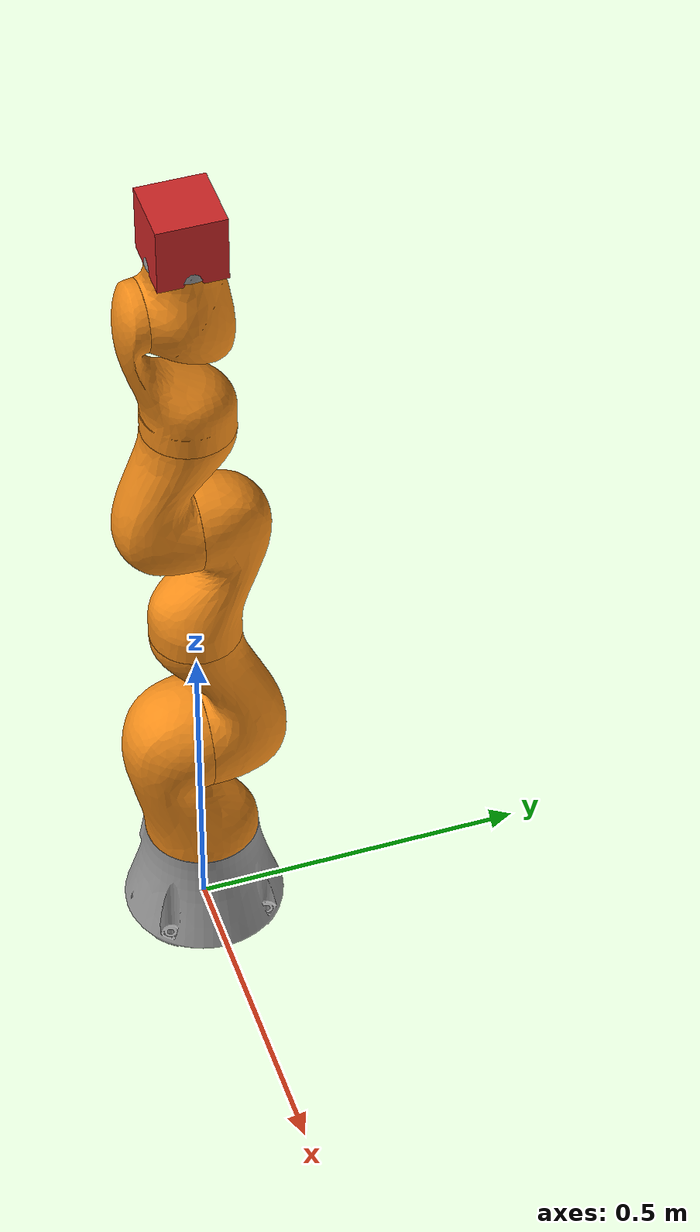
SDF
<sdf version='1.6'>
  <model name='iiwa14'>
    <link name='link_0'>
      <pose frame=''>0 0 0 0 -0 0</pose>
      <inertial>
        <pose frame=''>-0.1 0 0.07 0 -0 0</pose>
        <mass>5</mass>
        <inertia>
          <ixx>0.05</ixx>
          <ixy>0</ixy>
          <ixz>0</ixz>
          <iyy>0.06</iyy>
          <iyz>0</iyz>
          <izz>0.03</izz>
        </inertia>
      </inertial>
      <collision name='link_0_collision'>
        <pose frame=''>0 0 0 0 -0 0</pose>
        <geometry>
          <mesh>
            <scale>1 1 1</scale>
            <uri>model://iiwa_description/meshes/iiwa14/collision/link_0.stl</uri>
          </mesh>
        </geometry>
        <surface>
          <contact>
            <ode/>
          </contact>
          <friction>
            <ode>
              <mu>0.2</mu>
              <mu2>0.2</mu2>
            </ode>
          </friction>
        </surface>
      </collision>
      <visual name='link_0_visual'>
        <pose frame=''>0 0 0 0 -0 0</pose>
        <geometry>
          <mesh>
            <scale>1 1 1</scale>
            <uri>model://iiwa_description/meshes/iiwa14/visual/link_0.stl</uri>
          </mesh>
        </geometry>
        <material>
          <script>
            <name>Gazebo/Grey</name>
            <uri>file://media/materials/scripts/gazebo.material</uri>
          </script>
        </material>
      </visual>
      <gravity>1</gravity>
      <velocity_decay/>
    </link>
    <joint name='world_joint' type='fixed'>
      <child>link_0</child>
      <parent>world</parent>
    </joint>
    <link name='link_1'>
      <pose frame=''>0 0 0.1575 0 -0 0</pose>
      <inertial>
        <pose frame=''>0 -0.03 0.12 0 -0 0</pose>
        <mass>4</mass>
        <inertia>
          <ixx>0.1</ixx>
          <ixy>0</ixy>
          <ixz>0</ixz>
          <iyy>0.09</iyy>
          <iyz>0</iyz>
          <izz>0.02</izz>
        </inertia>
      </inertial>
      <collision name='link_1_collision'>
        <pose frame=''>0 0 0 0 -0 0</pose>
        <geometry>
          <mesh>
            <scale>1 1 1</scale>
            <uri>model://iiwa_description/meshes/iiwa14/collision/link_1.stl</uri>
          </mesh>
        </geometry>
        <surface>
          <contact>
            <ode/>
          </contact>
          <friction>
            <ode>
              <mu>0.2</mu>
              <mu2>0.2</mu2>
            </ode>
          </friction>
        </surface>
      </collision>
      <visual name='link_1_visual'>
        <pose frame=''>0 0 0 0 -0 0</pose>
        <geometry>
          <mesh>
            <scale>1 1 1</scale>
            <uri>model://iiwa_description/meshes/iiwa14/visual/link_1.stl</uri>
          </mesh>
        </geometry>
        <material>
          <script>
            <name>Gazebo/Orange</name>
            <uri>file://media/materials/scripts/gazebo.material</uri>
          </script>
        </material>
      </visual>
      <gravity>1</gravity>
      <velocity_decay/>
    </link>
    <joint name='joint_1' type='revolute'>
      <child>link_1</child>
      <parent>link_0</parent>
      <axis>
        <xyz>0 0 1</xyz>
        <limit>
          <lower>-2.96706</lower>
          <upper>2.96706</upper>
          <effort>320</effort>
          <velocity>1.48353</velocity>
        </limit>
        <dynamics>
          <damping>0.5</damping>
          <friction>0</friction>
          <spring_reference>0</spring_reference>
          <spring_stiffness>0</spring_stiffness>
        </dynamics>
        <use_parent_model_frame>1</use_parent_model_frame>
      </axis>
    </joint>
    <link name='link_2'>
      <pose frame=''>0 0 0.36 1.5708 -0 -3.14159</pose>
      <inertial>
        <pose frame=''>0.0003 0.059 0.042 0 -0 0</pose>
        <mass>4</mass>
        <inertia>
          <ixx>0.05</ixx>
          <ixy>0</ixy>
          <ixz>0</ixz>
          <iyy>0.018</iyy>
          <iyz>0</iyz>
          <izz>0.044</izz>
        </inertia>
      </inertial>
      <collision name='link_2_collision'>
        <pose frame=''>0 0 0 0 -0 0</pose>
        <geometry>
          <mesh>
            <scale>1 1 1</scale>
            <uri>model://iiwa_description/meshes/iiwa14/collision/link_2.stl</uri>
          </mesh>
        </geometry>
        <surface>
          <contact>
            <ode/>
          </contact>
          <friction>
            <ode>
              <mu>0.2</mu>
              <mu2>0.2</mu2>
            </ode>
          </friction>
        </surface>
      </collision>
      <visual name='link_2_visual'>
        <pose frame=''>0 0 0 0 -0 0</pose>
        <geometry>
          <mesh>
            <scale>1 1 1</scale>
            <uri>model://iiwa_description/meshes/iiwa14/visual/link_2.stl</uri>
          </mesh>
        </geometry>
        <material>
          <script>
            <name>Gazebo/Orange</name>
            <uri>file://media/materials/scripts/gazebo.material</uri>
          </script>
        </material>
      </visual>
      <gravity>1</gravity>
      <velocity_decay/>
    </link>
    <joint name='joint_2' type='revolute'>
      <child>link_2</child>
      <parent>link_1</parent>
      <axis>
        <xyz>-0 1 0</xyz>
        <limit>
          <lower>-2.0944</lower>
          <upper>2.0944</upper>
          <effort>320</effort>
          <velocity>1.48353</velocity>
        </limit>
        <dynamics>
          <damping>0.5</damping>
          <friction>0</friction>
          <spring_reference>0</spring_reference>
          <spring_stiffness>0</spring_stiffness>
        </dynamics>
        <use_parent_model_frame>1</use_parent_model_frame>
      </axis>
    </joint>
    <link name='link_3'>
      <pose frame=''>0 -0 0.5645 0 0 0</pose>
      <inertial>
        <pose frame=''>0 0.03 0.13 0 -0 0</pose>
        <mass>3</mass>
        <inertia>
          <ixx>0.08</ixx>
          <ixy>0</ixy>
          <ixz>0</ixz>
          <iyy>0.075</iyy>
          <iyz>0</iyz>
          <izz>0.01</izz>
        </inertia>
      </inertial>
      <collision name='link_3_collision'>
        <pose frame=''>0 0 0 0 -0 0</pose>
        <geometry>
          <mesh>
            <scale>1 1 1</scale>
            <uri>model://iiwa_description/meshes/iiwa14/collision/link_3.stl</uri>
          </mesh>
        </geometry>
        <surface>
          <contact>
            <ode/>
          </contact>
          <friction>
            <ode>
              <mu>0.2</mu>
              <mu2>0.2</mu2>
            </ode>
          </friction>
        </surface>
      </collision>
      <visual name='link_3_visual'>
        <pose frame=''>0 0 0 0 -0 0</pose>
        <geometry>
          <mesh>
            <scale>1 1 1</scale>
            <uri>model://iiwa_description/meshes/iiwa14/visual/link_3.stl</uri>
          </mesh>
        </geometry>
        <material>
          <script>
            <name>Gazebo/Orange</name>
            <uri>file://media/materials/scripts/gazebo.material</uri>
          </script>
        </material>
      </visual>
      <gravity>1</gravity>
      <velocity_decay/>
    </link>
    <joint name='joint_3' type='revolute'>
      <child>link_3</child>
      <parent>link_2</parent>
      <axis>
        <xyz>0 0 1</xyz>
        <limit>
          <lower>-2.96706</lower>
          <upper>2.96706</upper>
          <effort>176</effort>
          <velocity>1.74533</velocity>
        </limit>
        <dynamics>
          <damping>0.5</damping>
          <friction>0</friction>
          <spring_reference>0</spring_reference>
          <spring_stiffness>0</spring_stiffness>
        </dynamics>
        <use_parent_model_frame>1</use_parent_model_frame>
      </axis>
    </joint>
    <link name='link_4'>
      <pose frame=''>0 -0 0.78 1.5708 0 0</pose>
      <inertial>
        <pose frame=''>0 0.067 0.034 0 -0 0</pose>
        <mass>2.7</mass>
        <inertia>
          <ixx>0.03</ixx>
          <ixy>0</ixy>
          <ixz>0</ixz>
          <iyy>0.01</iyy>
          <iyz>0</iyz>
          <izz>0.029</izz>
        </inertia>
      </inertial>
      <collision name='link_4_collision'>
        <pose frame=''>0 0 0 0 -0 0</pose>
        <geometry>
          <mesh>
            <scale>1 1 1</scale>
            <uri>model://iiwa_description/meshes/iiwa14/collision/link_4.stl</uri>
          </mesh>
        </geometry>
        <surface>
          <contact>
            <ode/>
          </contact>
          <friction>
            <ode>
              <mu>0.2</mu>
              <mu2>0.2</mu2>
            </ode>
          </friction>
        </surface>
      </collision>
      <visual name='link_4_visual'>
        <pose frame=''>0 0 0 0 -0 0</pose>
        <geometry>
          <mesh>
            <scale>1 1 1</scale>
            <uri>model://iiwa_description/meshes/iiwa14/visual/link_4.stl</uri>
          </mesh>
        </geometry>
        <material>
          <script>
            <name>Gazebo/Orange</name>
            <uri>file://media/materials/scripts/gazebo.material</uri>
          </script>
        </material>
      </visual>
      <gravity>1</gravity>
      <velocity_decay/>
    </link>
    <joint name='joint_4' type='revolute'>
      <child>link_4</child>
      <parent>link_3</parent>
      <axis>
        <xyz>0 -1 0</xyz>
        <limit>
          <lower>-2.0944</lower>
          <upper>2.0944</upper>
          <effort>176</effort>
          <velocity>1.309</velocity>
        </limit>
        <dynamics>
          <damping>0.5</damping>
          <friction>0</friction>
          <spring_reference>0</spring_reference>
          <spring_stiffness>0</spring_stiffness>
        </dynamics>
        <use_parent_model_frame>1</use_parent_model_frame>
      </axis>
    </joint>
    <link name='link_5'>
      <pose frame=''>0 -0 0.9645 0 -0 -3.14159</pose>
      <inertial>
        <pose frame=''>0.0001 0.021 0.076 0 -0 0</pose>
        <mass>1.7</mass>
        <inertia>
          <ixx>0.02</ixx>
          <ixy>0</ixy>
          <ixz>0</ixz>
          <iyy>0.018</iyy>
          <iyz>0</iyz>
          <izz>0.005</izz>
        </inertia>
      </inertial>
      <collision name='link_5_collision'>
        <pose frame=''>0 0 0 0 -0 0</pose>
        <geometry>
          <mesh>
            <scale>1 1 1</scale>
            <uri>model://iiwa_description/meshes/iiwa14/collision/link_5.stl</uri>
          </mesh>
        </geometry>
        <surface>
          <contact>
            <ode/>
          </contact>
          <friction>
            <ode>
              <mu>0.2</mu>
              <mu2>0.2</mu2>
            </ode>
          </friction>
        </surface>
      </collision>
      <visual name='link_5_visual'>
        <pose frame=''>0 0 0 0 -0 0</pose>
        <geometry>
          <mesh>
            <scale>1 1 1</scale>
            <uri>model://iiwa_description/meshes/iiwa14/visual/link_5.stl</uri>
          </mesh>
        </geometry>
        <material>
          <script>
            <name>Gazebo/Orange</name>
            <uri>file://media/materials/scripts/gazebo.material</uri>
          </script>
        </material>
      </visual>
      <gravity>1</gravity>
      <velocity_decay/>
    </link>
    <joint name='joint_5' type='revolute'>
      <child>link_5</child>
      <parent>link_4</parent>
      <axis>
        <xyz>0 0 1</xyz>
        <limit>
          <lower>-2.96706</lower>
          <upper>2.96706</upper>
          <effort>110</effort>
          <velocity>2.26893</velocity>
        </limit>
        <dynamics>
          <damping>0.5</damping>
          <friction>0</friction>
          <spring_reference>0</spring_reference>
          <spring_stiffness>0</spring_stiffness>
        </dynamics>
        <use_parent_model_frame>1</use_parent_model_frame>
      </axis>
    </joint>
    <link name='link_6'>
      <pose frame=''>0 0 1.18 1.5708 -0 -3.14159</pose>
      <inertial>
        <pose frame=''>0 0.0006 0.0004 0 -0 0</pose>
        <mass>1.8</mass>
        <inertia>
          <ixx>0.005</ixx>
          <ixy>0</ixy>
          <ixz>0</ixz>
          <iyy>0.0036</iyy>
          <iyz>0</iyz>
          <izz>0.0047</izz>
        </inertia>
      </inertial>
      <collision name='link_6_collision'>
        <pose frame=''>0 0 0 0 -0 0</pose>
        <geometry>
          <mesh>
            <scale>1 1 1</scale>
            <uri>model://iiwa_description/meshes/iiwa14/collision/link_6.stl</uri>
          </mesh>
        </geometry>
        <surface>
          <contact>
            <ode/>
          </contact>
          <friction>
            <ode>
              <mu>0.2</mu>
              <mu2>0.2</mu2>
            </ode>
          </friction>
        </surface>
      </collision>
      <visual name='link_6_visual'>
        <pose frame=''>0 0 0 0 -0 0</pose>
        <geometry>
          <mesh>
            <scale>1 1 1</scale>
            <uri>model://iiwa_description/meshes/iiwa14/visual/link_6.stl</uri>
          </mesh>
        </geometry>
        <material>
          <script>
            <name>Gazebo/Orange</name>
            <uri>file://media/materials/scripts/gazebo.material</uri>
          </script>
        </material>
      </visual>
      <gravity>1</gravity>
      <velocity_decay/>
    </link>
    <joint name='joint_6' type='revolute'>
      <child>link_6</child>
      <parent>link_5</parent>
      <axis>
        <xyz>-0 1 -0</xyz>
        <limit>
          <lower>-2.0944</lower>
          <upper>2.0944</upper>
          <effort>40</effort>
          <velocity>2.35619</velocity>
        </limit>
        <dynamics>
          <damping>0.5</damping>
          <friction>0</friction>
          <spring_reference>0</spring_reference>
          <spring_stiffness>0</spring_stiffness>
        </dynamics>
        <use_parent_model_frame>1</use_parent_model_frame>
      </axis>
    </joint>
    <link name='link_7'>
      <pose frame=''>0 0 1.261 0 0 0</pose>
      <inertial>
        <pose frame=''>0 0 0.020001 0 -0 0</pose>
        <mass>0.30001</mass>
        <inertia>
          <ixx>0.00100101</ixx>
          <ixy>0</ixy>
          <ixz>0</ixz>
          <iyy>0.00100101</iyy>
          <iyz>0</iyz>
          <izz>0.001001</izz>
        </inertia>
      </inertial>
      <collision name='link_7_collision'>
        <pose frame=''>0 0 0 0 -0 0</pose>
        <geometry>
          <mesh>
            <scale>1 1 1</scale>
            <uri>model://iiwa_description/meshes/iiwa14/collision/link_7.stl</uri>
          </mesh>
        </geometry>
        <surface>
          <contact>
            <ode/>
          </contact>
          <friction>
            <ode>
              <mu>0.2</mu>
              <mu2>0.2</mu2>
            </ode>
          </friction>
        </surface>
      </collision>
      <collision name='link_7_fixed_joint_lump__link_ee_collision_1'>
        <pose frame=''>0 0 0.045 0 -0 0</pose>
        <geometry>
          <box>
            <size>0.1 0.1 0.1</size>
          </box>
        </geometry>
        <surface>
          <contact>
            <ode/>
          </contact>
          <friction>
            <ode>
              <mu>0.2</mu>
              <mu2>0.2</mu2>
            </ode>
          </friction>
        </surface>
      </collision>
      <visual name='link_7_visual'>
        <pose frame=''>0 0 0 0 -0 0</pose>
        <geometry>
          <mesh>
            <scale>1 1 1</scale>
            <uri>model://iiwa_description/meshes/iiwa14/visual/link_7.stl</uri>
          </mesh>
        </geometry>
        <material>
          <script>
            <name>Gazebo/Grey</name>
            <uri>file://media/materials/scripts/gazebo.material</uri>
          </script>
        </material>
      </visual>
      <visual name='link_7_fixed_joint_lump__link_ee_visual_1'>
        <pose frame=''>0 0 0.045 0 -0 0</pose>
        <geometry>
          <box>
            <size>0.1 0.1 0.1</size>
          </box>
        </geometry>
        <material>
          <script>
            <name>Gazebo/Red</name>
            <uri>file://media/materials/scripts/gazebo.material</uri>
          </script>
        </material>
      </visual>
      <velocity_decay/>
      <gravity>1</gravity>
      <velocity_decay/>
      <sensor name='iiwa_contactsensor_sensor' type='contact'>
        <always_on>1</always_on>
        <contact>
          <collision>joint_ee__link_ee_collision_5</collision>
          <topic>__default_topic__</topic>
        </contact>
        <plugin name='link_ee_plugin' filename='libgazebo_ros_bumper.so'>
          <bumperTopicName>iiwa_contactsensor_state</bumperTopicName>
          <frameName>link_ee</frameName>
          <frameName>world</frameName>
        </plugin>
        <pose frame=''>0 0 0.045 0 -0 0</pose>
      </sensor>
    </link>
    <joint name='joint_7' type='revolute'>
      <child>link_7</child>
      <parent>link_6</parent>
      <axis>
        <xyz>0 0 1</xyz>
        <limit>
          <lower>-3.05433</lower>
          <upper>3.05433</upper>
          <effort>40</effort>
          <velocity>2.35619</velocity>
        </limit>
        <dynamics>
          <damping>0.5</damping>
          <friction>0</friction>
          <spring_reference>0</spring_reference>
          <spring_stiffness>0</spring_stiffness>
        </dynamics>
        <use_parent_model_frame>1</use_parent_model_frame>
      </axis>
    </joint>
    <static>0</static>
    <plugin name='gazebo_ros_control' filename='libgazebo_ros_control.so'>
      <robotNamespace>/iiwa</robotNamespace>
      <robotSimType>iiwa_gazebo/GravityCompensationHWSim</robotSimType>
    </plugin>
  </model>
</sdf>
